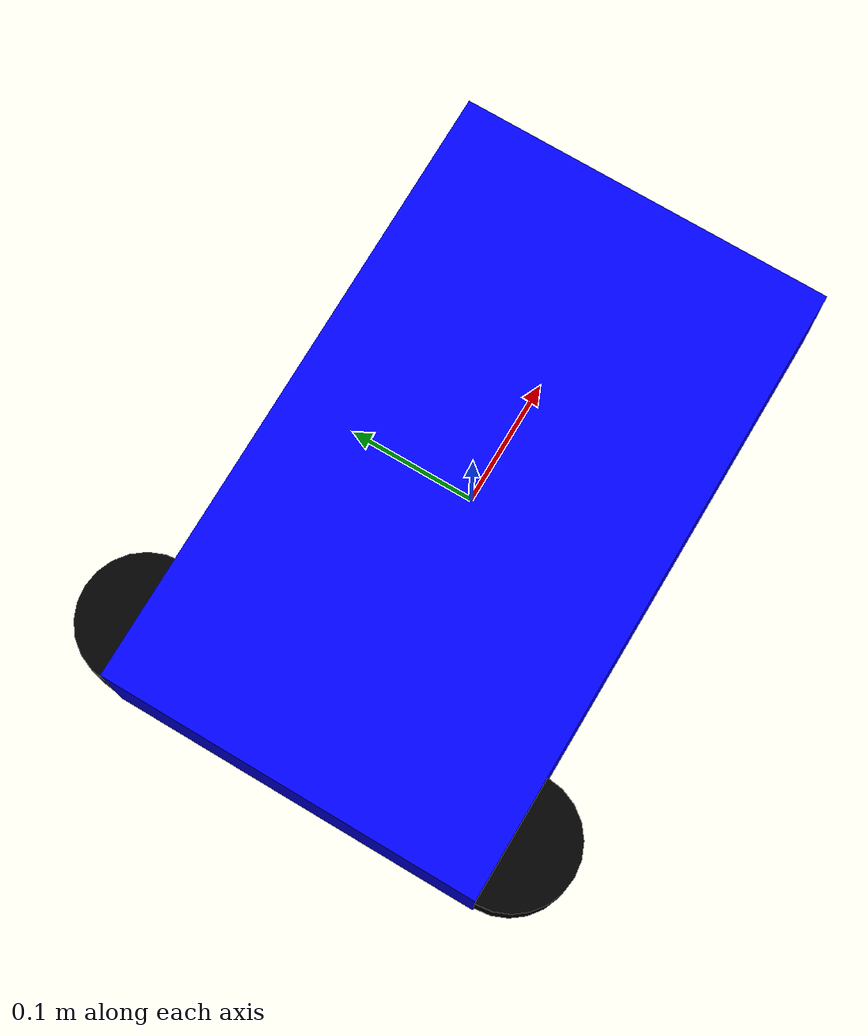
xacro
<?xml version="1.0"?>
<robot name="rover" xmlns:xacro="http://www.ros.org/wiki/xacro">

  <!-- Properties -->
  <xacro:property name="wheel_radius" value="0.05"/>
  <xacro:property name="wheel_separation" value="0.4"/>
  <xacro:property name="wheel_width" value="0.02"/>

  <!-- Base Link -->
  <link name="base_link">
    <visual>
      <geometry>
        <box size="0.5 0.3 0.1"/>
      </geometry>
      <material name="blue">
        <color rgba="0 0 1 1"/>
      </material>
    </visual>
  </link>

  <!-- Wheels -->
  <joint name="left_wheel_joint" type="continuous">
    <parent link="base_link"/>
    <child link="left_wheel"/>
    <origin xyz="-0.2 0.15 0"/>
    <axis xyz="0 1 0"/>
</joint>

<link name="left_wheel">
    <visual>
        <geometry>
            <cylinder length="0.05" radius="0.05"/>
        </geometry>
        <material name="black">
            <color rgba="0 0 0 1"/>
        </material>
    </visual>
</link>

<joint name="right_wheel_joint" type="continuous">
    <parent link="base_link"/>
    <child link="right_wheel"/>
    <origin xyz="-0.2 -0.15 0"/>
    <axis xyz="0 1 0"/>
</joint>

<link name="right_wheel">
    <visual>
        <geometry>
            <cylinder length="0.05" radius="0.05"/>
        </geometry>
        <material name="black">
            <color rgba="0 0 0 1"/>
        </material>
    </visual>
</link>

  <!-- Gazebo Plugin for Differential Drive -->
  <gazebo>
    <plugin name="diff_drive_controller" filename="libgazebo_ros_diff_drive.so">
      <ros>
        <namespace>/</namespace>
      </ros>
      <left_joint>left_wheel_joint</left_joint>
      <right_joint>right_wheel_joint</right_joint>
      <max_wheel_torque>100.0</max_wheel_torque>
      <update_rate>100.0</update_rate>
    </plugin>
  </gazebo>

</robot>
